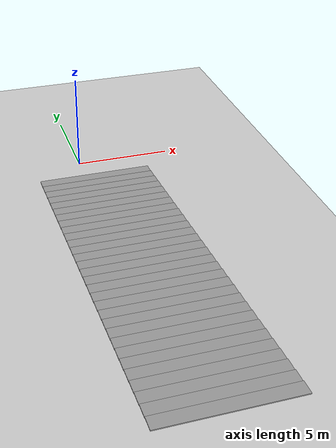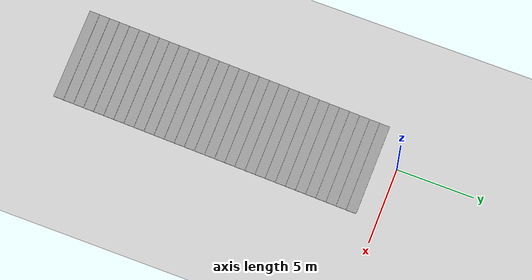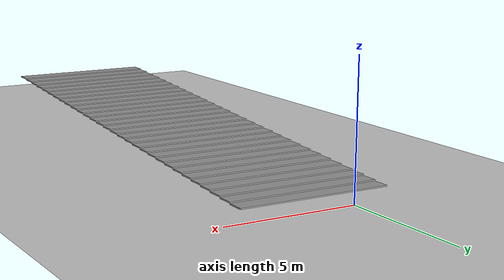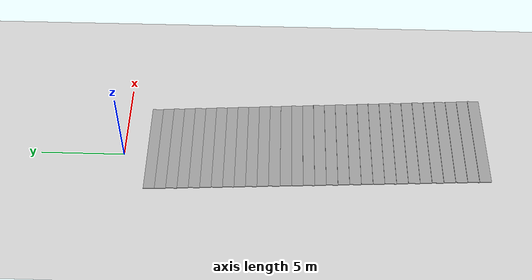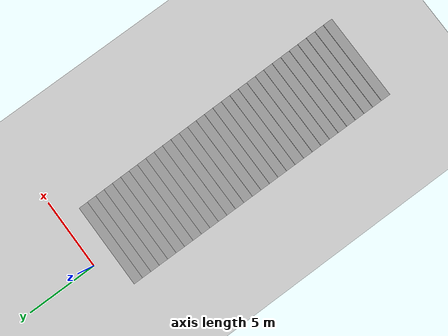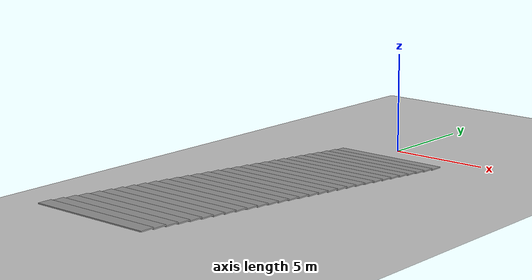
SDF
<sdf version="1.7">
 <world name="default">
  <model name="ground_plane">
   <static>1</static>
   <link name="link">
    <collision name="collision">
     <geometry><plane><normal>0 0 1</normal><size>100 100</size></plane></geometry>
     <surface>
      <contact><collide_bitmask>65535</collide_bitmask></contact>
      <friction><ode><mu>100</mu><mu2>50</mu2></ode></friction>
     </surface>
    </collision>
    <visual name="visual">
     <cast_shadows>0</cast_shadows>
     <geometry><plane><normal>0 0 1</normal><size>100 100</size></plane></geometry>
     <material>
      <script><uri>file://media/materials/scripts/gazebo.material</uri><name>Gazebo/Grey</name></script>
     </material>
    </visual>
   </link>
  </model>
  <model name="stair0.5">
   <pose>0.567208 -11.3793 0 0 -0 0</pose>
   <link name="Stairs_1">
    <visual name="Stairs_1_Visual_0">
     <pose>-0.025 9.66667 0.025 0 -0 0</pose>
     <geometry><box><size>6 0.666667 0.05</size></box></geometry>
     <material>
      <script><uri>file://media/materials/scripts/gazebo.material</uri><name>Gazebo/Grey</name></script>
      <ambient>1 1 1 1</ambient>
     </material>
     <meta><layer>0</layer></meta>
    </visual>
    <collision name="Stairs_1_Collision_0">
     <geometry><box><size>6 0.666667 0.05</size></box></geometry>
     <pose>-0.025 9.66667 0.025 0 -0 0</pose>
    </collision>
    <visual name="Stairs_1_Visual_1">
     <pose>-0.025 9 0.075 0 -0 0</pose>
     <geometry><box><size>6 0.666667 0.05</size></box></geometry>
     <material>
      <script><uri>file://media/materials/scripts/gazebo.material</uri><name>Gazebo/Grey</name></script>
      <ambient>1 1 1 1</ambient>
     </material>
     <meta><layer>0</layer></meta>
    </visual>
    <collision name="Stairs_1_Collision_1">
     <geometry><box><size>6 0.666667 0.05</size></box></geometry>
     <pose>-0.025 9 0.075 0 -0 0</pose>
    </collision>
    <visual name="Stairs_1_Visual_2">
     <pose>-0.025 8.33333 0.125 0 -0 0</pose>
     <geometry><box><size>6 0.666667 0.05</size></box></geometry>
     <material>
      <script><uri>file://media/materials/scripts/gazebo.material</uri><name>Gazebo/Grey</name></script>
      <ambient>1 1 1 1</ambient>
     </material>
     <meta><layer>0</layer></meta>
    </visual>
    <collision name="Stairs_1_Collision_2">
     <geometry><box><size>6 0.666667 0.05</size></box></geometry>
     <pose>-0.025 8.33333 0.125 0 -0 0</pose>
    </collision>
    <visual name="Stairs_1_Visual_3">
     <pose>-0.025 7.66667 0.175 0 -0 0</pose>
     <geometry><box><size>6 0.666667 0.05</size></box></geometry>
     <material>
      <script><uri>file://media/materials/scripts/gazebo.material</uri><name>Gazebo/Grey</name></script>
      <ambient>1 1 1 1</ambient>
     </material>
     <meta><layer>0</layer></meta>
    </visual>
    <collision name="Stairs_1_Collision_3">
     <geometry><box><size>6 0.666667 0.05</size></box></geometry>
     <pose>-0.025 7.66667 0.175 0 -0 0</pose>
    </collision>
    <visual name="Stairs_1_Visual_4">
     <pose>-0.025 7 0.225 0 -0 0</pose>
     <geometry><box><size>6 0.666667 0.05</size></box></geometry>
     <material>
      <script><uri>file://media/materials/scripts/gazebo.material</uri><name>Gazebo/Grey</name></script>
      <ambient>1 1 1 1</ambient>
     </material>
     <meta><layer>0</layer></meta>
    </visual>
    <collision name="Stairs_1_Collision_4">
     <geometry><box><size>6 0.666667 0.05</size></box></geometry>
     <pose>-0.025 7 0.225 0 -0 0</pose>
    </collision>
    <visual name="Stairs_1_Visual_5">
     <pose>-0.025 6.33333 0.275 0 -0 0</pose>
     <geometry><box><size>6 0.666667 0.05</size></box></geometry>
     <material>
      <script><uri>file://media/materials/scripts/gazebo.material</uri><name>Gazebo/Grey</name></script>
      <ambient>1 1 1 1</ambient>
     </material>
     <meta><layer>0</layer></meta>
    </visual>
    <collision name="Stairs_1_Collision_5">
     <geometry><box><size>6 0.666667 0.05</size></box></geometry>
     <pose>-0.025 6.33333 0.275 0 -0 0</pose>
    </collision>
    <visual name="Stairs_1_Visual_6">
     <pose>-0.025 5.66667 0.325 0 -0 0</pose>
     <geometry><box><size>6 0.666667 0.05</size></box></geometry>
     <material>
      <script><uri>file://media/materials/scripts/gazebo.material</uri><name>Gazebo/Grey</name></script>
      <ambient>1 1 1 1</ambient>
     </material>
     <meta><layer>0</layer></meta>
    </visual>
    <collision name="Stairs_1_Collision_6">
     <geometry><box><size>6 0.666667 0.05</size></box></geometry>
     <pose>-0.025 5.66667 0.325 0 -0 0</pose>
    </collision>
    <visual name="Stairs_1_Visual_7">
     <pose>-0.025 5 0.375 0 -0 0</pose>
     <geometry><box><size>6 0.666667 0.05</size></box></geometry>
     <material>
      <script><uri>file://media/materials/scripts/gazebo.material</uri><name>Gazebo/Grey</name></script>
      <ambient>1 1 1 1</ambient>
     </material>
     <meta><layer>0</layer></meta>
    </visual>
    <collision name="Stairs_1_Collision_7">
     <geometry><box><size>6 0.666667 0.05</size></box></geometry>
     <pose>-0.025 5 0.375 0 -0 0</pose>
    </collision>
    <visual name="Stairs_1_Visual_8">
     <pose>-0.025 4.33333 0.425 0 -0 0</pose>
     <geometry><box><size>6 0.666667 0.05</size></box></geometry>
     <material>
      <script><uri>file://media/materials/scripts/gazebo.material</uri><name>Gazebo/Grey</name></script>
      <ambient>1 1 1 1</ambient>
     </material>
     <meta><layer>0</layer></meta>
    </visual>
    <collision name="Stairs_1_Collision_8">
     <geometry><box><size>6 0.666667 0.05</size></box></geometry>
     <pose>-0.025 4.33333 0.425 0 -0 0</pose>
    </collision>
    <visual name="Stairs_1_Visual_9">
     <pose>-0.025 3.66667 0.475 0 -0 0</pose>
     <geometry><box><size>6 0.666667 0.05</size></box></geometry>
     <material>
      <script><uri>file://media/materials/scripts/gazebo.material</uri><name>Gazebo/Grey</name></script>
      <ambient>1 1 1 1</ambient>
     </material>
     <meta><layer>0</layer></meta>
    </visual>
    <collision name="Stairs_1_Collision_9">
     <geometry><box><size>6 0.666667 0.05</size></box></geometry>
     <pose>-0.025 3.66667 0.475 0 -0 0</pose>
    </collision>
    <visual name="Stairs_1_Visual_10">
     <pose>-0.025 3 0.525 0 -0 0</pose>
     <geometry><box><size>6 0.666667 0.05</size></box></geometry>
     <material>
      <script><uri>file://media/materials/scripts/gazebo.material</uri><name>Gazebo/Grey</name></script>
      <ambient>1 1 1 1</ambient>
     </material>
     <meta><layer>0</layer></meta>
    </visual>
    <collision name="Stairs_1_Collision_10">
     <geometry><box><size>6 0.666667 0.05</size></box></geometry>
     <pose>-0.025 3 0.525 0 -0 0</pose>
    </collision>
    <visual name="Stairs_1_Visual_11">
     <pose>-0.025 2.33333 0.575 0 -0 0</pose>
     <geometry><box><size>6 0.666667 0.05</size></box></geometry>
     <material>
      <script><uri>file://media/materials/scripts/gazebo.material</uri><name>Gazebo/Grey</name></script>
      <ambient>1 1 1 1</ambient>
     </material>
     <meta><layer>0</layer></meta>
    </visual>
    <collision name="Stairs_1_Collision_11">
     <geometry><box><size>6 0.666667 0.05</size></box></geometry>
     <pose>-0.025 2.33333 0.575 0 -0 0</pose>
    </collision>
    <visual name="Stairs_1_Visual_12">
     <pose>-0.025 1.66667 0.625 0 -0 0</pose>
     <geometry><box><size>6 0.666667 0.05</size></box></geometry>
     <material>
      <script><uri>file://media/materials/scripts/gazebo.material</uri><name>Gazebo/Grey</name></script>
      <ambient>1 1 1 1</ambient>
     </material>
     <meta><layer>0</layer></meta>
    </visual>
    <collision name="Stairs_1_Collision_12">
     <geometry><box><size>6 0.666667 0.05</size></box></geometry>
     <pose>-0.025 1.66667 0.625 0 -0 0</pose>
    </collision>
    <visual name="Stairs_1_Visual_13">
     <pose>-0.025 1 0.675 0 -0 0</pose>
     <geometry><box><size>6 0.666667 0.05</size></box></geometry>
     <material>
      <script><uri>file://media/materials/scripts/gazebo.material</uri><name>Gazebo/Grey</name></script>
      <ambient>1 1 1 1</ambient>
     </material>
     <meta><layer>0</layer></meta>
    </visual>
    <collision name="Stairs_1_Collision_13">
     <geometry><box><size>6 0.666667 0.05</size></box></geometry>
     <pose>-0.025 1 0.675 0 -0 0</pose>
    </collision>
    <visual name="Stairs_1_Visual_14">
     <pose>-0.025 0.333333 0.725 0 -0 0</pose>
     <geometry><box><size>6 0.666667 0.05</size></box></geometry>
     <material>
      <script><uri>file://media/materials/scripts/gazebo.material</uri><name>Gazebo/Grey</name></script>
      <ambient>1 1 1 1</ambient>
     </material>
     <meta><layer>0</layer></meta>
    </visual>
    <collision name="Stairs_1_Collision_14">
     <geometry><box><size>6 0.666667 0.05</size></box></geometry>
     <pose>-0.025 0.333333 0.725 0 -0 0</pose>
    </collision>
    <visual name="Stairs_1_Visual_15">
     <pose>-0.025 -0.333333 0.775 0 -0 0</pose>
     <geometry><box><size>6 0.666667 0.05</size></box></geometry>
     <material>
      <script><uri>file://media/materials/scripts/gazebo.material</uri><name>Gazebo/Grey</name></script>
      <ambient>1 1 1 1</ambient>
     </material>
     <meta><layer>0</layer></meta>
    </visual>
    <collision name="Stairs_1_Collision_15">
     <geometry><box><size>6 0.666667 0.05</size></box></geometry>
     <pose>-0.025 -0.333333 0.775 0 -0 0</pose>
    </collision>
    <visual name="Stairs_1_Visual_16">
     <pose>-0.025 -1 0.825 0 -0 0</pose>
     <geometry><box><size>6 0.666667 0.05</size></box></geometry>
     <material>
      <script><uri>file://media/materials/scripts/gazebo.material</uri><name>Gazebo/Grey</name></script>
      <ambient>1 1 1 1</ambient>
     </material>
     <meta><layer>0</layer></meta>
    </visual>
    <collision name="Stairs_1_Collision_16">
     <geometry><box><size>6 0.666667 0.05</size></box></geometry>
     <pose>-0.025 -1 0.825 0 -0 0</pose>
    </collision>
    <visual name="Stairs_1_Visual_17">
     <pose>-0.025 -1.66667 0.875 0 -0 0</pose>
     <geometry><box><size>6 0.666667 0.05</size></box></geometry>
     <material>
      <script><uri>file://media/materials/scripts/gazebo.material</uri><name>Gazebo/Grey</name></script>
      <ambient>1 1 1 1</ambient>
     </material>
     <meta><layer>0</layer></meta>
    </visual>
    <collision name="Stairs_1_Collision_17">
     <geometry><box><size>6 0.666667 0.05</size></box></geometry>
     <pose>-0.025 -1.66667 0.875 0 -0 0</pose>
    </collision>
    <visual name="Stairs_1_Visual_18">
     <pose>-0.025 -2.33333 0.925 0 -0 0</pose>
     <geometry><box><size>6 0.666667 0.05</size></box></geometry>
     <material>
      <script><uri>file://media/materials/scripts/gazebo.material</uri><name>Gazebo/Grey</name></script>
      <ambient>1 1 1 1</ambient>
     </material>
     <meta><layer>0</layer></meta>
    </visual>
    <collision name="Stairs_1_Collision_18">
     <geometry><box><size>6 0.666667 0.05</size></box></geometry>
     <pose>-0.025 -2.33333 0.925 0 -0 0</pose>
    </collision>
    <visual name="Stairs_1_Visual_19">
     <pose>-0.025 -3 0.975 0 -0 0</pose>
     <geometry><box><size>6 0.666667 0.05</size></box></geometry>
     <material>
      <script><uri>file://media/materials/scripts/gazebo.material</uri><name>Gazebo/Grey</name></script>
      <ambient>1 1 1 1</ambient>
     </material>
     <meta><layer>0</layer></meta>
    </visual>
    <collision name="Stairs_1_Collision_19">
     <geometry><box><size>6 0.666667 0.05</size></box></geometry>
     <pose>-0.025 -3 0.975 0 -0 0</pose>
    </collision>
    <visual name="Stairs_1_Visual_20">
     <pose>-0.025 -3.66667 1.025 0 -0 0</pose>
     <geometry><box><size>6 0.666667 0.05</size></box></geometry>
     <material>
      <script><uri>file://media/materials/scripts/gazebo.material</uri><name>Gazebo/Grey</name></script>
      <ambient>1 1 1 1</ambient>
     </material>
     <meta><layer>0</layer></meta>
    </visual>
    <collision name="Stairs_1_Collision_20">
     <geometry><box><size>6 0.666667 0.05</size></box></geometry>
     <pose>-0.025 -3.66667 1.025 0 -0 0</pose>
    </collision>
    <visual name="Stairs_1_Visual_21">
     <pose>-0.025 -4.33333 1.075 0 -0 0</pose>
     <geometry><box><size>6 0.666667 0.05</size></box></geometry>
     <material>
      <script><uri>file://media/materials/scripts/gazebo.material</uri><name>Gazebo/Grey</name></script>
      <ambient>1 1 1 1</ambient>
     </material>
     <meta><layer>0</layer></meta>
    </visual>
    <collision name="Stairs_1_Collision_21">
     <geometry><box><size>6 0.666667 0.05</size></box></geometry>
     <pose>-0.025 -4.33333 1.075 0 -0 0</pose>
    </collision>
    <visual name="Stairs_1_Visual_22">
     <pose>-0.025 -5 1.125 0 -0 0</pose>
     <geometry><box><size>6 0.666667 0.05</size></box></geometry>
     <material>
      <script><uri>file://media/materials/scripts/gazebo.material</uri><name>Gazebo/Grey</name></script>
      <ambient>1 1 1 1</ambient>
     </material>
     <meta><layer>0</layer></meta>
    </visual>
    <collision name="Stairs_1_Collision_22">
     <geometry><box><size>6 0.666667 0.05</size></box></geometry>
     <pose>-0.025 -5 1.125 0 -0 0</pose>
    </collision>
    <visual name="Stairs_1_Visual_23">
     <pose>-0.025 -5.66667 1.175 0 -0 0</pose>
     <geometry><box><size>6 0.666667 0.05</size></box></geometry>
     <material>
      <script><uri>file://media/materials/scripts/gazebo.material</uri><name>Gazebo/Grey</name></script>
      <ambient>1 1 1 1</ambient>
     </material>
     <meta><layer>0</layer></meta>
    </visual>
    <collision name="Stairs_1_Collision_23">
     <geometry><box><size>6 0.666667 0.05</size></box></geometry>
     <pose>-0.025 -5.66667 1.175 0 -0 0</pose>
    </collision>
    <visual name="Stairs_1_Visual_24">
     <pose>-0.025 -6.33333 1.225 0 -0 0</pose>
     <geometry><box><size>6 0.666667 0.05</size></box></geometry>
     <material>
      <script><uri>file://media/materials/scripts/gazebo.material</uri><name>Gazebo/Grey</name></script>
      <ambient>1 1 1 1</ambient>
     </material>
     <meta><layer>0</layer></meta>
    </visual>
    <collision name="Stairs_1_Collision_24">
     <geometry><box><size>6 0.666667 0.05</size></box></geometry>
     <pose>-0.025 -6.33333 1.225 0 -0 0</pose>
    </collision>
    <visual name="Stairs_1_Visual_25">
     <pose>-0.025 -7 1.275 0 -0 0</pose>
     <geometry><box><size>6 0.666667 0.05</size></box></geometry>
     <material>
      <script><uri>file://media/materials/scripts/gazebo.material</uri><name>Gazebo/Grey</name></script>
      <ambient>1 1 1 1</ambient>
     </material>
     <meta><layer>0</layer></meta>
    </visual>
    <collision name="Stairs_1_Collision_25">
     <geometry><box><size>6 0.666667 0.05</size></box></geometry>
     <pose>-0.025 -7 1.275 0 -0 0</pose>
    </collision>
    <visual name="Stairs_1_Visual_26">
     <pose>-0.025 -7.66667 1.325 0 -0 0</pose>
     <geometry><box><size>6 0.666667 0.05</size></box></geometry>
     <material>
      <script><uri>file://media/materials/scripts/gazebo.material</uri><name>Gazebo/Grey</name></script>
      <ambient>1 1 1 1</ambient>
     </material>
     <meta><layer>0</layer></meta>
    </visual>
    <collision name="Stairs_1_Collision_26">
     <geometry><box><size>6 0.666667 0.05</size></box></geometry>
     <pose>-0.025 -7.66667 1.325 0 -0 0</pose>
    </collision>
    <visual name="Stairs_1_Visual_27">
     <pose>-0.025 -8.33333 1.375 0 -0 0</pose>
     <geometry><box><size>6 0.666667 0.05</size></box></geometry>
     <material>
      <script><uri>file://media/materials/scripts/gazebo.material</uri><name>Gazebo/Grey</name></script>
      <ambient>1 1 1 1</ambient>
     </material>
     <meta><layer>0</layer></meta>
    </visual>
    <collision name="Stairs_1_Collision_27">
     <geometry><box><size>6 0.666667 0.05</size></box></geometry>
     <pose>-0.025 -8.33333 1.375 0 -0 0</pose>
    </collision>
    <visual name="Stairs_1_Visual_28">
     <pose>-0.025 -9 1.425 0 -0 0</pose>
     <geometry><box><size>6 0.666667 0.05</size></box></geometry>
     <material>
      <script><uri>file://media/materials/scripts/gazebo.material</uri><name>Gazebo/Grey</name></script>
      <ambient>1 1 1 1</ambient>
     </material>
     <meta><layer>0</layer></meta>
    </visual>
    <collision name="Stairs_1_Collision_28">
     <geometry><box><size>6 0.666667 0.05</size></box></geometry>
     <pose>-0.025 -9 1.425 0 -0 0</pose>
    </collision>
    <visual name="Stairs_1_Visual_29">
     <pose>-0.025 -9.66667 1.475 0 -0 0</pose>
     <geometry><box><size>6 0.666667 0.05</size></box></geometry>
     <material>
      <script><uri>file://media/materials/scripts/gazebo.material</uri><name>Gazebo/Grey</name></script>
      <ambient>1 1 1 1</ambient>
     </material>
     <meta><layer>0</layer></meta>
    </visual>
    <collision name="Stairs_1_Collision_29">
     <geometry><box><size>6 0.666667 0.05</size></box></geometry>
     <pose>-0.025 -9.66667 1.475 0 -0 0</pose>
    </collision>
   </link>
   <static>1</static>
  </model>
 </world>
</sdf>
